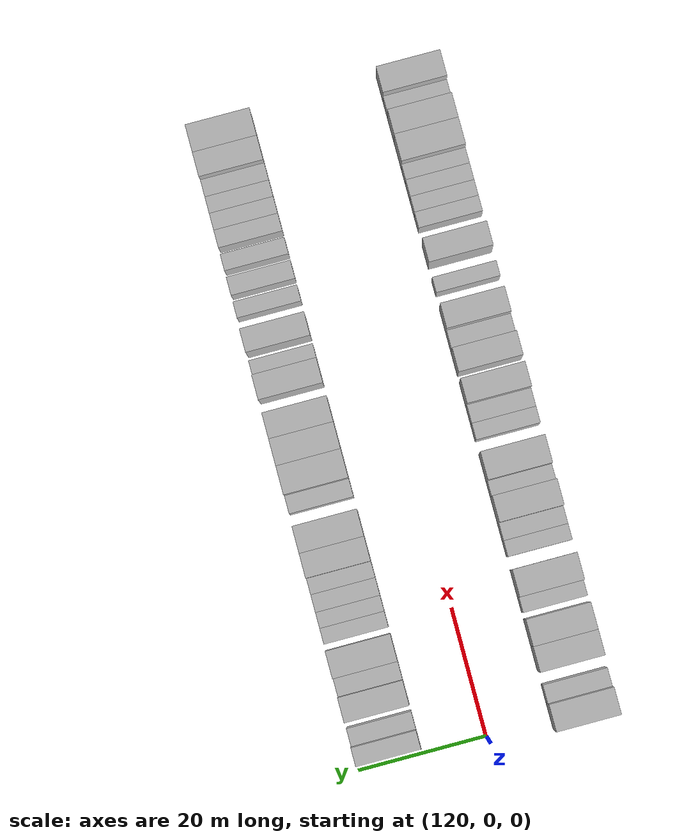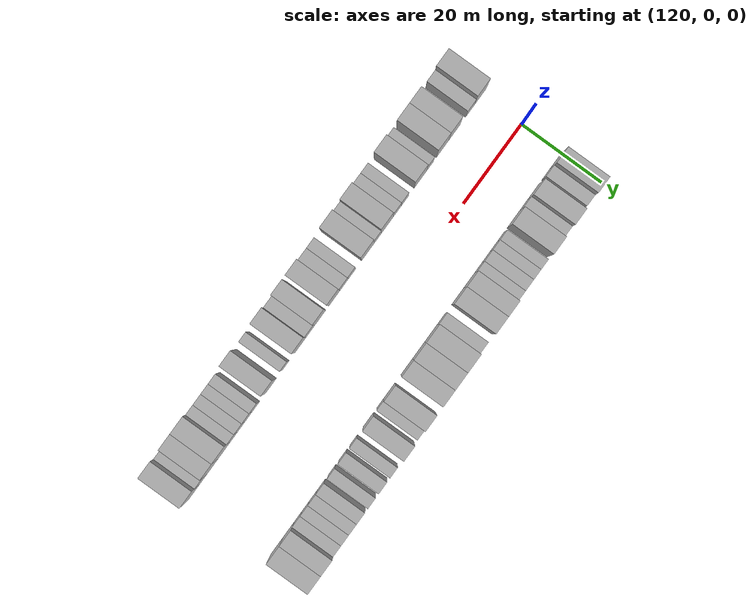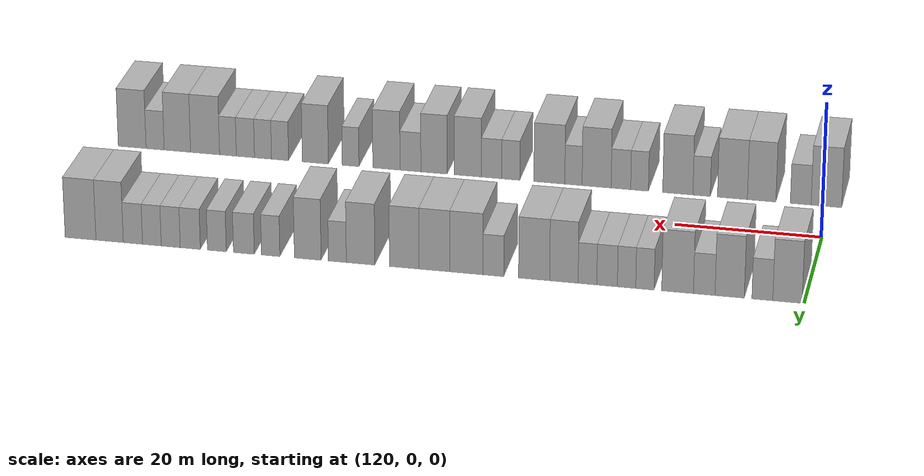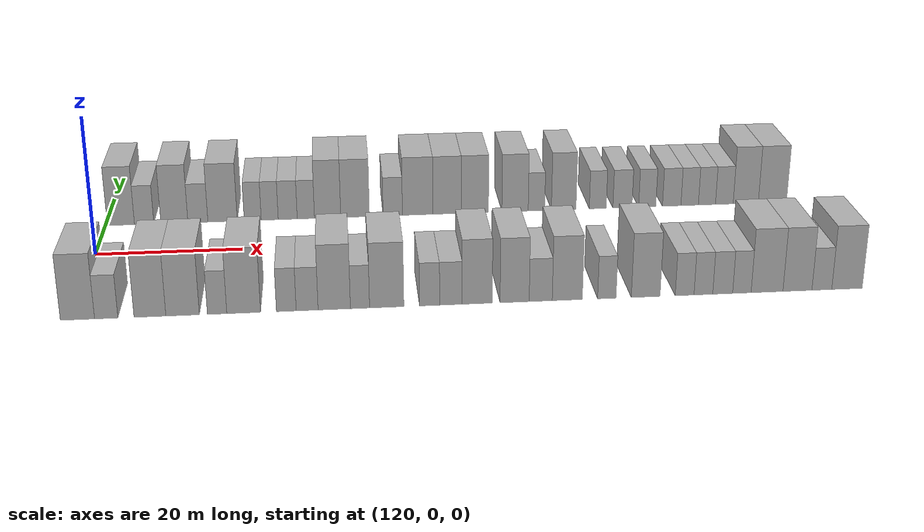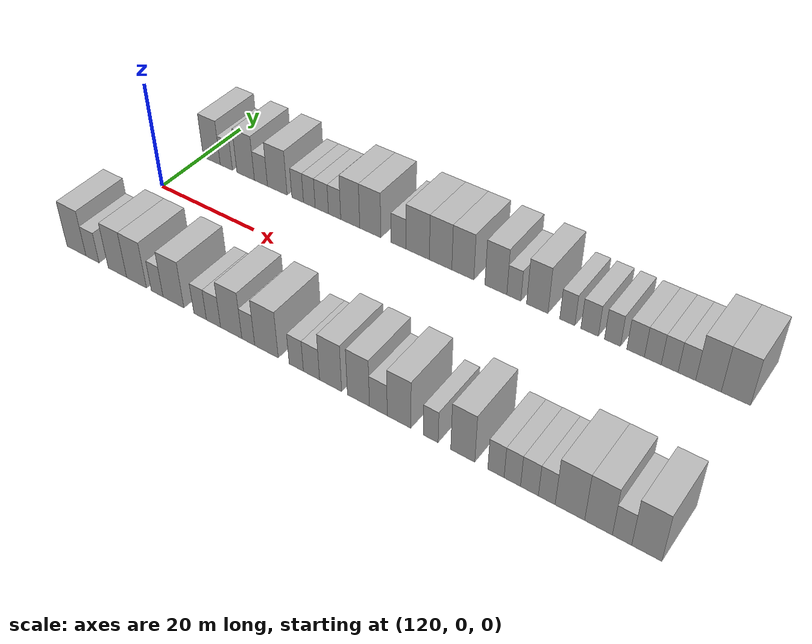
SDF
<sdf version="1.6">
 <world name="default">
  <model name="building_27">
   <static>1</static>
   <pose>122.1426 15.0000 0 0.000000 0.000000 1.570796</pose>
   <link name="link">
    <pose>0 0 4.50 0 0 0</pose>
    <collision name="collision"><geometry><box><size>10.0000 3.8595 9.0000</size></box></geometry></collision>
    <visual name="visual">
     <cast_shadows>0</cast_shadows>
     <geometry><box><size>10.0000 3.8595 9.0000</size></box></geometry>
     <material>
      <script>
       <uri>model://HANNAS_wall/materials/scripts</uri>
       <uri>model://HANNAS_wall/materials/textures</uri>
       <name>vrc/HANNAS_wall</name>
      </script>
     </material>
    </visual>
   </link>
  </model>
  <model name="building_28">
   <static>1</static>
   <pose>125.4529 15.0000 0 0.000000 0.000000 1.570796</pose>
   <link name="link">
    <pose>0 0 3.00 0 0 0</pose>
    <collision name="collision"><geometry><box><size>10.0000 2.7610 6.0000</size></box></geometry></collision>
    <visual name="visual">
     <cast_shadows>0</cast_shadows>
     <geometry><box><size>10.0000 2.7610 6.0000</size></box></geometry>
     <material>
      <script>
       <uri>model://HANNAS_wall/materials/scripts</uri>
       <uri>model://HANNAS_wall/materials/textures</uri>
       <name>vrc/HANNAS_wall</name>
      </script>
     </material>
    </visual>
   </link>
  </model>
  <model name="building_29">
   <static>1</static>
   <pose>129.7695 15.0000 0 0.000000 0.000000 1.570796</pose>
   <link name="link">
    <pose>0 0 4.50 0 0 0</pose>
    <collision name="collision"><geometry><box><size>10.0000 3.8722 9.0000</size></box></geometry></collision>
    <visual name="visual">
     <cast_shadows>0</cast_shadows>
     <geometry><box><size>10.0000 3.8722 9.0000</size></box></geometry>
     <material>
      <script>
       <uri>model://HANNAS_wall/materials/scripts</uri>
       <uri>model://HANNAS_wall/materials/textures</uri>
       <name>vrc/HANNAS_wall</name>
      </script>
     </material>
    </visual>
   </link>
  </model>
  <model name="building_30">
   <static>1</static>
   <pose>133.1367 15.0000 0 0.000000 0.000000 1.570796</pose>
   <link name="link">
    <pose>0 0 3.00 0 0 0</pose>
    <collision name="collision"><geometry><box><size>10.0000 2.8621 6.0000</size></box></geometry></collision>
    <visual name="visual">
     <cast_shadows>0</cast_shadows>
     <geometry><box><size>10.0000 2.8621 6.0000</size></box></geometry>
     <material>
      <script>
       <uri>model://HANNAS_wall/materials/scripts</uri>
       <uri>model://HANNAS_wall/materials/textures</uri>
       <name>vrc/HANNAS_wall</name>
      </script>
     </material>
    </visual>
   </link>
  </model>
  <model name="building_31">
   <static>1</static>
   <pose>136.6825 15.0000 0 0.000000 0.000000 1.570796</pose>
   <link name="link">
    <pose>0 0 4.50 0 0 0</pose>
    <collision name="collision"><geometry><box><size>10.0000 4.2296 9.0000</size></box></geometry></collision>
    <visual name="visual">
     <cast_shadows>0</cast_shadows>
     <geometry><box><size>10.0000 4.2296 9.0000</size></box></geometry>
     <material>
      <script>
       <uri>model://HANNAS_wall/materials/scripts</uri>
       <uri>model://HANNAS_wall/materials/textures</uri>
       <name>vrc/HANNAS_wall</name>
      </script>
     </material>
    </visual>
   </link>
  </model>
  <model name="building_32">
   <static>1</static>
   <pose>141.0260 15.0000 0 0.000000 0.000000 1.570796</pose>
   <link name="link">
    <pose>0 0 3.00 0 0 0</pose>
    <collision name="collision"><geometry><box><size>10.0000 2.4573 6.0000</size></box></geometry></collision>
    <visual name="visual">
     <cast_shadows>0</cast_shadows>
     <geometry><box><size>10.0000 2.4573 6.0000</size></box></geometry>
     <material>
      <script>
       <uri>model://HANNAS_wall/materials/scripts</uri>
       <uri>model://HANNAS_wall/materials/textures</uri>
       <name>vrc/HANNAS_wall</name>
      </script>
     </material>
    </visual>
   </link>
  </model>
  <model name="building_33">
   <static>1</static>
   <pose>143.4801 15.0000 0 0.000000 0.000000 1.570796</pose>
   <link name="link">
    <pose>0 0 3.00 0 0 0</pose>
    <collision name="collision"><geometry><box><size>10.0000 2.4510 6.0000</size></box></geometry></collision>
    <visual name="visual">
     <cast_shadows>0</cast_shadows>
     <geometry><box><size>10.0000 2.4510 6.0000</size></box></geometry>
     <material>
      <script>
       <uri>model://HANNAS_wall/materials/scripts</uri>
       <uri>model://HANNAS_wall/materials/textures</uri>
       <name>vrc/HANNAS_wall</name>
      </script>
     </material>
    </visual>
   </link>
  </model>
  <model name="building_34">
   <static>1</static>
   <pose>146.0820 15.0000 0 0.000000 0.000000 1.570796</pose>
   <link name="link">
    <pose>0 0 3.00 0 0 0</pose>
    <collision name="collision"><geometry><box><size>10.0000 2.7527 6.0000</size></box></geometry></collision>
    <visual name="visual">
     <cast_shadows>0</cast_shadows>
     <geometry><box><size>10.0000 2.7527 6.0000</size></box></geometry>
     <material>
      <script>
       <uri>model://HANNAS_wall/materials/scripts</uri>
       <uri>model://HANNAS_wall/materials/textures</uri>
       <name>vrc/HANNAS_wall</name>
      </script>
     </material>
    </visual>
   </link>
  </model>
  <model name="building_35">
   <static>1</static>
   <pose>148.7128 15.0000 0 0.000000 0.000000 1.570796</pose>
   <link name="link">
    <pose>0 0 3.00 0 0 0</pose>
    <collision name="collision"><geometry><box><size>10.0000 2.5088 6.0000</size></box></geometry></collision>
    <visual name="visual">
     <cast_shadows>0</cast_shadows>
     <geometry><box><size>10.0000 2.5088 6.0000</size></box></geometry>
     <material>
      <script>
       <uri>model://HANNAS_wall/materials/scripts</uri>
       <uri>model://HANNAS_wall/materials/textures</uri>
       <name>vrc/HANNAS_wall</name>
      </script>
     </material>
    </visual>
   </link>
  </model>
  <model name="building_36">
   <static>1</static>
   <pose>151.8779 15.0000 0 0.000000 0.000000 1.570796</pose>
   <link name="link">
    <pose>0 0 4.50 0 0 0</pose>
    <collision name="collision"><geometry><box><size>10.0000 3.8214 9.0000</size></box></geometry></collision>
    <visual name="visual">
     <cast_shadows>0</cast_shadows>
     <geometry><box><size>10.0000 3.8214 9.0000</size></box></geometry>
     <material>
      <script>
       <uri>model://HANNAS_wall/materials/scripts</uri>
       <uri>model://HANNAS_wall/materials/textures</uri>
       <name>vrc/HANNAS_wall</name>
      </script>
     </material>
    </visual>
   </link>
  </model>
  <model name="building_37">
   <static>1</static>
   <pose>155.8819 15.0000 0 0.000000 0.000000 1.570796</pose>
   <link name="link">
    <pose>0 0 4.50 0 0 0</pose>
    <collision name="collision"><geometry><box><size>10.0000 4.1867 9.0000</size></box></geometry></collision>
    <visual name="visual">
     <cast_shadows>0</cast_shadows>
     <geometry><box><size>10.0000 4.1867 9.0000</size></box></geometry>
     <material>
      <script>
       <uri>model://HANNAS_wall/materials/scripts</uri>
       <uri>model://HANNAS_wall/materials/textures</uri>
       <name>vrc/HANNAS_wall</name>
      </script>
     </material>
    </visual>
   </link>
  </model>
  <model name="building_38">
   <static>1</static>
   <pose>161.3899 15.0000 0 0.000000 0.000000 1.570796</pose>
   <link name="link">
    <pose>0 0 3.00 0 0 0</pose>
    <collision name="collision"><geometry><box><size>10.0000 2.8291 6.0000</size></box></geometry></collision>
    <visual name="visual">
     <cast_shadows>0</cast_shadows>
     <geometry><box><size>10.0000 2.8291 6.0000</size></box></geometry>
     <material>
      <script>
       <uri>model://HANNAS_wall/materials/scripts</uri>
       <uri>model://HANNAS_wall/materials/textures</uri>
       <name>vrc/HANNAS_wall</name>
      </script>
     </material>
    </visual>
   </link>
  </model>
  <model name="building_39">
   <static>1</static>
   <pose>165.0470 15.0000 0 0.000000 0.000000 1.570796</pose>
   <link name="link">
    <pose>0 0 4.50 0 0 0</pose>
    <collision name="collision"><geometry><box><size>10.0000 4.4852 9.0000</size></box></geometry></collision>
    <visual name="visual">
     <cast_shadows>0</cast_shadows>
     <geometry><box><size>10.0000 4.4852 9.0000</size></box></geometry>
     <material>
      <script>
       <uri>model://HANNAS_wall/materials/scripts</uri>
       <uri>model://HANNAS_wall/materials/textures</uri>
       <name>vrc/HANNAS_wall</name>
      </script>
     </material>
    </visual>
   </link>
  </model>
  <model name="building_40">
   <static>1</static>
   <pose>169.3788 15.0000 0 0.000000 0.000000 1.570796</pose>
   <link name="link">
    <pose>0 0 4.50 0 0 0</pose>
    <collision name="collision"><geometry><box><size>10.0000 4.1784 9.0000</size></box></geometry></collision>
    <visual name="visual">
     <cast_shadows>0</cast_shadows>
     <geometry><box><size>10.0000 4.1784 9.0000</size></box></geometry>
     <material>
      <script>
       <uri>model://HANNAS_wall/materials/scripts</uri>
       <uri>model://HANNAS_wall/materials/textures</uri>
       <name>vrc/HANNAS_wall</name>
      </script>
     </material>
    </visual>
   </link>
  </model>
  <model name="building_41">
   <static>1</static>
   <pose>173.4807 15.0000 0 0.000000 0.000000 1.570796</pose>
   <link name="link">
    <pose>0 0 4.50 0 0 0</pose>
    <collision name="collision"><geometry><box><size>10.0000 4.0255 9.0000</size></box></geometry></collision>
    <visual name="visual">
     <cast_shadows>0</cast_shadows>
     <geometry><box><size>10.0000 4.0255 9.0000</size></box></geometry>
     <material>
      <script>
       <uri>model://HANNAS_wall/materials/scripts</uri>
       <uri>model://HANNAS_wall/materials/textures</uri>
       <name>vrc/HANNAS_wall</name>
      </script>
     </material>
    </visual>
   </link>
  </model>
  <model name="building_42">
   <static>1</static>
   <pose>179.4450 15.0000 0 0.000000 0.000000 1.570796</pose>
   <link name="link">
    <pose>0 0 4.50 0 0 0</pose>
    <collision name="collision"><geometry><box><size>10.0000 3.9032 9.0000</size></box></geometry></collision>
    <visual name="visual">
     <cast_shadows>0</cast_shadows>
     <geometry><box><size>10.0000 3.9032 9.0000</size></box></geometry>
     <material>
      <script>
       <uri>model://HANNAS_wall/materials/scripts</uri>
       <uri>model://HANNAS_wall/materials/textures</uri>
       <name>vrc/HANNAS_wall</name>
      </script>
     </material>
    </visual>
   </link>
  </model>
  <model name="building_43">
   <static>1</static>
   <pose>182.6256 15.0000 0 0.000000 0.000000 1.570796</pose>
   <link name="link">
    <pose>0 0 3.00 0 0 0</pose>
    <collision name="collision"><geometry><box><size>10.0000 2.4580 6.0000</size></box></geometry></collision>
    <visual name="visual">
     <cast_shadows>0</cast_shadows>
     <geometry><box><size>10.0000 2.4580 6.0000</size></box></geometry>
     <material>
      <script>
       <uri>model://HANNAS_wall/materials/scripts</uri>
       <uri>model://HANNAS_wall/materials/textures</uri>
       <name>vrc/HANNAS_wall</name>
      </script>
     </material>
    </visual>
   </link>
  </model>
  <model name="building_44">
   <static>1</static>
   <pose>186.6923 15.0000 0 0.000000 0.000000 1.570796</pose>
   <link name="link">
    <pose>0 0 4.50 0 0 0</pose>
    <collision name="collision"><geometry><box><size>10.0000 3.6755 9.0000</size></box></geometry></collision>
    <visual name="visual">
     <cast_shadows>0</cast_shadows>
     <geometry><box><size>10.0000 3.6755 9.0000</size></box></geometry>
     <material>
      <script>
       <uri>model://HANNAS_wall/materials/scripts</uri>
       <uri>model://HANNAS_wall/materials/textures</uri>
       <name>vrc/HANNAS_wall</name>
      </script>
     </material>
    </visual>
   </link>
  </model>
  <model name="building_45">
   <static>1</static>
   <pose>191.7995 15.0000 0 0.000000 0.000000 1.570796</pose>
   <link name="link">
    <pose>0 0 3.00 0 0 0</pose>
    <collision name="collision"><geometry><box><size>10.0000 2.5390 6.0000</size></box></geometry></collision>
    <visual name="visual">
     <cast_shadows>0</cast_shadows>
     <geometry><box><size>10.0000 2.5390 6.0000</size></box></geometry>
     <material>
      <script>
       <uri>model://HANNAS_wall/materials/scripts</uri>
       <uri>model://HANNAS_wall/materials/textures</uri>
       <name>vrc/HANNAS_wall</name>
      </script>
     </material>
    </visual>
   </link>
  </model>
  <model name="building_46">
   <static>1</static>
   <pose>195.5084 15.0000 0 0.000000 0.000000 1.570796</pose>
   <link name="link">
    <pose>0 0 3.00 0 0 0</pose>
    <collision name="collision"><geometry><box><size>10.0000 2.8789 6.0000</size></box></geometry></collision>
    <visual name="visual">
     <cast_shadows>0</cast_shadows>
     <geometry><box><size>10.0000 2.8789 6.0000</size></box></geometry>
     <material>
      <script>
       <uri>model://HANNAS_wall/materials/scripts</uri>
       <uri>model://HANNAS_wall/materials/textures</uri>
       <name>vrc/HANNAS_wall</name>
      </script>
     </material>
    </visual>
   </link>
  </model>
  <model name="building_47">
   <static>1</static>
   <pose>199.2473 15.0000 0 0.000000 0.000000 1.570796</pose>
   <link name="link">
    <pose>0 0 3.00 0 0 0</pose>
    <collision name="collision"><geometry><box><size>10.0000 2.5990 6.0000</size></box></geometry></collision>
    <visual name="visual">
     <cast_shadows>0</cast_shadows>
     <geometry><box><size>10.0000 2.5990 6.0000</size></box></geometry>
     <material>
      <script>
       <uri>model://HANNAS_wall/materials/scripts</uri>
       <uri>model://HANNAS_wall/materials/textures</uri>
       <name>vrc/HANNAS_wall</name>
      </script>
     </material>
    </visual>
   </link>
  </model>
  <model name="building_48">
   <static>1</static>
   <pose>202.9447 15.0000 0 0.000000 0.000000 1.570796</pose>
   <link name="link">
    <pose>0 0 3.00 0 0 0</pose>
    <collision name="collision"><geometry><box><size>10.0000 2.7958 6.0000</size></box></geometry></collision>
    <visual name="visual">
     <cast_shadows>0</cast_shadows>
     <geometry><box><size>10.0000 2.7958 6.0000</size></box></geometry>
     <material>
      <script>
       <uri>model://HANNAS_wall/materials/scripts</uri>
       <uri>model://HANNAS_wall/materials/textures</uri>
       <name>vrc/HANNAS_wall</name>
      </script>
     </material>
    </visual>
   </link>
  </model>
  <model name="building_49">
   <static>1</static>
   <pose>205.6645 15.0000 0 0.000000 0.000000 1.570796</pose>
   <link name="link">
    <pose>0 0 3.00 0 0 0</pose>
    <collision name="collision"><geometry><box><size>10.0000 2.6438 6.0000</size></box></geometry></collision>
    <visual name="visual">
     <cast_shadows>0</cast_shadows>
     <geometry><box><size>10.0000 2.6438 6.0000</size></box></geometry>
     <material>
      <script>
       <uri>model://HANNAS_wall/materials/scripts</uri>
       <uri>model://HANNAS_wall/materials/textures</uri>
       <name>vrc/HANNAS_wall</name>
      </script>
     </material>
    </visual>
   </link>
  </model>
  <model name="building_50">
   <static>1</static>
   <pose>208.2870 15.0000 0 0.000000 0.000000 1.570796</pose>
   <link name="link">
    <pose>0 0 3.00 0 0 0</pose>
    <collision name="collision"><geometry><box><size>10.0000 2.6012 6.0000</size></box></geometry></collision>
    <visual name="visual">
     <cast_shadows>0</cast_shadows>
     <geometry><box><size>10.0000 2.6012 6.0000</size></box></geometry>
     <material>
      <script>
       <uri>model://HANNAS_wall/materials/scripts</uri>
       <uri>model://HANNAS_wall/materials/textures</uri>
       <name>vrc/HANNAS_wall</name>
      </script>
     </material>
    </visual>
   </link>
  </model>
  <model name="building_51">
   <static>1</static>
   <pose>210.9340 15.0000 0 0.000000 0.000000 1.570796</pose>
   <link name="link">
    <pose>0 0 3.00 0 0 0</pose>
    <collision name="collision"><geometry><box><size>10.0000 2.6929 6.0000</size></box></geometry></collision>
    <visual name="visual">
     <cast_shadows>0</cast_shadows>
     <geometry><box><size>10.0000 2.6929 6.0000</size></box></geometry>
     <material>
      <script>
       <uri>model://HANNAS_wall/materials/scripts</uri>
       <uri>model://HANNAS_wall/materials/textures</uri>
       <name>vrc/HANNAS_wall</name>
      </script>
     </material>
    </visual>
   </link>
  </model>
  <model name="building_52">
   <static>1</static>
   <pose>214.1978 15.0000 0 0.000000 0.000000 1.570796</pose>
   <link name="link">
    <pose>0 0 4.50 0 0 0</pose>
    <collision name="collision"><geometry><box><size>10.0000 3.8347 9.0000</size></box></geometry></collision>
    <visual name="visual">
     <cast_shadows>0</cast_shadows>
     <geometry><box><size>10.0000 3.8347 9.0000</size></box></geometry>
     <material>
      <script>
       <uri>model://HANNAS_wall/materials/scripts</uri>
       <uri>model://HANNAS_wall/materials/textures</uri>
       <name>vrc/HANNAS_wall</name>
      </script>
     </material>
    </visual>
   </link>
  </model>
  <model name="building_53">
   <static>1</static>
   <pose>218.2767 15.0000 0 0.000000 0.000000 1.570796</pose>
   <link name="link">
    <pose>0 0 4.50 0 0 0</pose>
    <collision name="collision"><geometry><box><size>10.0000 4.3231 9.0000</size></box></geometry></collision>
    <visual name="visual">
     <cast_shadows>0</cast_shadows>
     <geometry><box><size>10.0000 4.3231 9.0000</size></box></geometry>
     <material>
      <script>
       <uri>model://HANNAS_wall/materials/scripts</uri>
       <uri>model://HANNAS_wall/materials/textures</uri>
       <name>vrc/HANNAS_wall</name>
      </script>
     </material>
    </visual>
   </link>
  </model>
  <model name="building_81">
   <static>1</static>
   <pose>120.4911 -15.0000 0 0.000000 0.000000 1.570796</pose>
   <link name="link">
    <pose>0 0 4.50 0 0 0</pose>
    <collision name="collision"><geometry><box><size>10.0000 4.2173 9.0000</size></box></geometry></collision>
    <visual name="visual">
     <cast_shadows>0</cast_shadows>
     <geometry><box><size>10.0000 4.2173 9.0000</size></box></geometry>
     <material>
      <script>
       <uri>model://HANNAS_wall/materials/scripts</uri>
       <uri>model://HANNAS_wall/materials/textures</uri>
       <name>vrc/HANNAS_wall</name>
      </script>
     </material>
    </visual>
   </link>
  </model>
  <model name="building_82">
   <static>1</static>
   <pose>124.0384 -15.0000 0 0.000000 0.000000 1.570796</pose>
   <link name="link">
    <pose>0 0 3.00 0 0 0</pose>
    <collision name="collision"><geometry><box><size>10.0000 2.8773 6.0000</size></box></geometry></collision>
    <visual name="visual">
     <cast_shadows>0</cast_shadows>
     <geometry><box><size>10.0000 2.8773 6.0000</size></box></geometry>
     <material>
      <script>
       <uri>model://HANNAS_wall/materials/scripts</uri>
       <uri>model://HANNAS_wall/materials/textures</uri>
       <name>vrc/HANNAS_wall</name>
      </script>
     </material>
    </visual>
   </link>
  </model>
  <model name="building_83">
   <static>1</static>
   <pose>129.4526 -15.0000 0 0.000000 0.000000 1.570796</pose>
   <link name="link">
    <pose>0 0 4.50 0 0 0</pose>
    <collision name="collision"><geometry><box><size>10.0000 3.9512 9.0000</size></box></geometry></collision>
    <visual name="visual">
     <cast_shadows>0</cast_shadows>
     <geometry><box><size>10.0000 3.9512 9.0000</size></box></geometry>
     <material>
      <script>
       <uri>model://HANNAS_wall/materials/scripts</uri>
       <uri>model://HANNAS_wall/materials/textures</uri>
       <name>vrc/HANNAS_wall</name>
      </script>
     </material>
    </visual>
   </link>
  </model>
  <model name="building_84">
   <static>1</static>
   <pose>133.5169 -15.0000 0 0.000000 0.000000 1.570796</pose>
   <link name="link">
    <pose>0 0 4.50 0 0 0</pose>
    <collision name="collision"><geometry><box><size>10.0000 4.1773 9.0000</size></box></geometry></collision>
    <visual name="visual">
     <cast_shadows>0</cast_shadows>
     <geometry><box><size>10.0000 4.1773 9.0000</size></box></geometry>
     <material>
      <script>
       <uri>model://HANNAS_wall/materials/scripts</uri>
       <uri>model://HANNAS_wall/materials/textures</uri>
       <name>vrc/HANNAS_wall</name>
      </script>
     </material>
    </visual>
   </link>
  </model>
  <model name="building_85">
   <static>1</static>
   <pose>137.8187 -15.0000 0 0.000000 0.000000 1.570796</pose>
   <link name="link">
    <pose>0 0 3.00 0 0 0</pose>
    <collision name="collision"><geometry><box><size>10.0000 2.4265 6.0000</size></box></geometry></collision>
    <visual name="visual">
     <cast_shadows>0</cast_shadows>
     <geometry><box><size>10.0000 2.4265 6.0000</size></box></geometry>
     <material>
      <script>
       <uri>model://HANNAS_wall/materials/scripts</uri>
       <uri>model://HANNAS_wall/materials/textures</uri>
       <name>vrc/HANNAS_wall</name>
      </script>
     </material>
    </visual>
   </link>
  </model>
  <model name="building_86">
   <static>1</static>
   <pose>141.1483 -15.0000 0 0.000000 0.000000 1.570796</pose>
   <link name="link">
    <pose>0 0 4.50 0 0 0</pose>
    <collision name="collision"><geometry><box><size>10.0000 4.2326 9.0000</size></box></geometry></collision>
    <visual name="visual">
     <cast_shadows>0</cast_shadows>
     <geometry><box><size>10.0000 4.2326 9.0000</size></box></geometry>
     <material>
      <script>
       <uri>model://HANNAS_wall/materials/scripts</uri>
       <uri>model://HANNAS_wall/materials/textures</uri>
       <name>vrc/HANNAS_wall</name>
      </script>
     </material>
    </visual>
   </link>
  </model>
  <model name="building_87">
   <static>1</static>
   <pose>146.5078 -15.0000 0 0.000000 0.000000 1.570796</pose>
   <link name="link">
    <pose>0 0 3.00 0 0 0</pose>
    <collision name="collision"><geometry><box><size>10.0000 2.4865 6.0000</size></box></geometry></collision>
    <visual name="visual">
     <cast_shadows>0</cast_shadows>
     <geometry><box><size>10.0000 2.4865 6.0000</size></box></geometry>
     <material>
      <script>
       <uri>model://HANNAS_wall/materials/scripts</uri>
       <uri>model://HANNAS_wall/materials/textures</uri>
       <name>vrc/HANNAS_wall</name>
      </script>
     </material>
    </visual>
   </link>
  </model>
  <model name="building_88">
   <static>1</static>
   <pose>149.1349 -15.0000 0 0.000000 0.000000 1.570796</pose>
   <link name="link">
    <pose>0 0 3.00 0 0 0</pose>
    <collision name="collision"><geometry><box><size>10.0000 2.7676 6.0000</size></box></geometry></collision>
    <visual name="visual">
     <cast_shadows>0</cast_shadows>
     <geometry><box><size>10.0000 2.7676 6.0000</size></box></geometry>
     <material>
      <script>
       <uri>model://HANNAS_wall/materials/scripts</uri>
       <uri>model://HANNAS_wall/materials/textures</uri>
       <name>vrc/HANNAS_wall</name>
      </script>
     </material>
    </visual>
   </link>
  </model>
  <model name="building_89">
   <static>1</static>
   <pose>152.5658 -15.0000 0 0.000000 0.000000 1.570796</pose>
   <link name="link">
    <pose>0 0 4.50 0 0 0</pose>
    <collision name="collision"><geometry><box><size>10.0000 4.0943 9.0000</size></box></geometry></collision>
    <visual name="visual">
     <cast_shadows>0</cast_shadows>
     <geometry><box><size>10.0000 4.0943 9.0000</size></box></geometry>
     <material>
      <script>
       <uri>model://HANNAS_wall/materials/scripts</uri>
       <uri>model://HANNAS_wall/materials/textures</uri>
       <name>vrc/HANNAS_wall</name>
      </script>
     </material>
    </visual>
   </link>
  </model>
  <model name="building_90">
   <static>1</static>
   <pose>155.8304 -15.0000 0 0.000000 0.000000 1.570796</pose>
   <link name="link">
    <pose>0 0 3.00 0 0 0</pose>
    <collision name="collision"><geometry><box><size>10.0000 2.4349 6.0000</size></box></geometry></collision>
    <visual name="visual">
     <cast_shadows>0</cast_shadows>
     <geometry><box><size>10.0000 2.4349 6.0000</size></box></geometry>
     <material>
      <script>
       <uri>model://HANNAS_wall/materials/scripts</uri>
       <uri>model://HANNAS_wall/materials/textures</uri>
       <name>vrc/HANNAS_wall</name>
      </script>
     </material>
    </visual>
   </link>
  </model>
  <model name="building_91">
   <static>1</static>
   <pose>159.2370 -15.0000 0 0.000000 0.000000 1.570796</pose>
   <link name="link">
    <pose>0 0 4.50 0 0 0</pose>
    <collision name="collision"><geometry><box><size>10.0000 4.3783 9.0000</size></box></geometry></collision>
    <visual name="visual">
     <cast_shadows>0</cast_shadows>
     <geometry><box><size>10.0000 4.3783 9.0000</size></box></geometry>
     <material>
      <script>
       <uri>model://HANNAS_wall/materials/scripts</uri>
       <uri>model://HANNAS_wall/materials/textures</uri>
       <name>vrc/HANNAS_wall</name>
      </script>
     </material>
    </visual>
   </link>
  </model>
  <model name="building_92">
   <static>1</static>
   <pose>164.7140 -15.0000 0 0.000000 0.000000 1.570796</pose>
   <link name="link">
    <pose>0 0 3.00 0 0 0</pose>
    <collision name="collision"><geometry><box><size>10.0000 2.5758 6.0000</size></box></geometry></collision>
    <visual name="visual">
     <cast_shadows>0</cast_shadows>
     <geometry><box><size>10.0000 2.5758 6.0000</size></box></geometry>
     <material>
      <script>
       <uri>model://HANNAS_wall/materials/scripts</uri>
       <uri>model://HANNAS_wall/materials/textures</uri>
       <name>vrc/HANNAS_wall</name>
      </script>
     </material>
    </visual>
   </link>
  </model>
  <model name="building_93">
   <static>1</static>
   <pose>167.4472 -15.0000 0 0.000000 0.000000 1.570796</pose>
   <link name="link">
    <pose>0 0 3.00 0 0 0</pose>
    <collision name="collision"><geometry><box><size>10.0000 2.8906 6.0000</size></box></geometry></collision>
    <visual name="visual">
     <cast_shadows>0</cast_shadows>
     <geometry><box><size>10.0000 2.8906 6.0000</size></box></geometry>
     <material>
      <script>
       <uri>model://HANNAS_wall/materials/scripts</uri>
       <uri>model://HANNAS_wall/materials/textures</uri>
       <name>vrc/HANNAS_wall</name>
      </script>
     </material>
    </visual>
   </link>
  </model>
  <model name="building_94">
   <static>1</static>
   <pose>170.8311 -15.0000 0 0.000000 0.000000 1.570796</pose>
   <link name="link">
    <pose>0 0 4.50 0 0 0</pose>
    <collision name="collision"><geometry><box><size>10.0000 3.8772 9.0000</size></box></geometry></collision>
    <visual name="visual">
     <cast_shadows>0</cast_shadows>
     <geometry><box><size>10.0000 3.8772 9.0000</size></box></geometry>
     <material>
      <script>
       <uri>model://HANNAS_wall/materials/scripts</uri>
       <uri>model://HANNAS_wall/materials/textures</uri>
       <name>vrc/HANNAS_wall</name>
      </script>
     </material>
    </visual>
   </link>
  </model>
  <model name="building_95">
   <static>1</static>
   <pose>175.6542 -15.0000 0 0.000000 0.000000 1.570796</pose>
   <link name="link">
    <pose>0 0 4.50 0 0 0</pose>
    <collision name="collision"><geometry><box><size>10.0000 3.7688 9.0000</size></box></geometry></collision>
    <visual name="visual">
     <cast_shadows>0</cast_shadows>
     <geometry><box><size>10.0000 3.7688 9.0000</size></box></geometry>
     <material>
      <script>
       <uri>model://HANNAS_wall/materials/scripts</uri>
       <uri>model://HANNAS_wall/materials/textures</uri>
       <name>vrc/HANNAS_wall</name>
      </script>
     </material>
    </visual>
   </link>
  </model>
  <model name="building_96">
   <static>1</static>
   <pose>179.0342 -15.0000 0 0.000000 0.000000 1.570796</pose>
   <link name="link">
    <pose>0 0 3.00 0 0 0</pose>
    <collision name="collision"><geometry><box><size>10.0000 2.9913 6.0000</size></box></geometry></collision>
    <visual name="visual">
     <cast_shadows>0</cast_shadows>
     <geometry><box><size>10.0000 2.9913 6.0000</size></box></geometry>
     <material>
      <script>
       <uri>model://HANNAS_wall/materials/scripts</uri>
       <uri>model://HANNAS_wall/materials/textures</uri>
       <name>vrc/HANNAS_wall</name>
      </script>
     </material>
    </visual>
   </link>
  </model>
  <model name="building_97">
   <static>1</static>
   <pose>182.4860 -15.0000 0 0.000000 0.000000 1.570796</pose>
   <link name="link">
    <pose>0 0 4.50 0 0 0</pose>
    <collision name="collision"><geometry><box><size>10.0000 3.9122 9.0000</size></box></geometry></collision>
    <visual name="visual">
     <cast_shadows>0</cast_shadows>
     <geometry><box><size>10.0000 3.9122 9.0000</size></box></geometry>
     <material>
      <script>
       <uri>model://HANNAS_wall/materials/scripts</uri>
       <uri>model://HANNAS_wall/materials/textures</uri>
       <name>vrc/HANNAS_wall</name>
      </script>
     </material>
    </visual>
   </link>
  </model>
  <model name="building_98">
   <static>1</static>
   <pose>187.6453 -15.0000 0 0.000000 0.000000 1.570796</pose>
   <link name="link">
    <pose>0 0 3.00 0 0 0</pose>
    <collision name="collision"><geometry><box><size>10.0000 2.4066 6.0000</size></box></geometry></collision>
    <visual name="visual">
     <cast_shadows>0</cast_shadows>
     <geometry><box><size>10.0000 2.4066 6.0000</size></box></geometry>
     <material>
      <script>
       <uri>model://HANNAS_wall/materials/scripts</uri>
       <uri>model://HANNAS_wall/materials/textures</uri>
       <name>vrc/HANNAS_wall</name>
      </script>
     </material>
    </visual>
   </link>
  </model>
  <model name="building_99">
   <static>1</static>
   <pose>192.7369 -15.0000 0 0.000000 0.000000 1.570796</pose>
   <link name="link">
    <pose>0 0 4.50 0 0 0</pose>
    <collision name="collision"><geometry><box><size>10.0000 3.7765 9.0000</size></box></geometry></collision>
    <visual name="visual">
     <cast_shadows>0</cast_shadows>
     <geometry><box><size>10.0000 3.7765 9.0000</size></box></geometry>
     <material>
      <script>
       <uri>model://HANNAS_wall/materials/scripts</uri>
       <uri>model://HANNAS_wall/materials/textures</uri>
       <name>vrc/HANNAS_wall</name>
      </script>
     </material>
    </visual>
   </link>
  </model>
  <model name="building_100">
   <static>1</static>
   <pose>197.8634 -15.0000 0 0.000000 0.000000 1.570796</pose>
   <link name="link">
    <pose>0 0 3.00 0 0 0</pose>
    <collision name="collision"><geometry><box><size>10.0000 2.4766 6.0000</size></box></geometry></collision>
    <visual name="visual">
     <cast_shadows>0</cast_shadows>
     <geometry><box><size>10.0000 2.4766 6.0000</size></box></geometry>
     <material>
      <script>
       <uri>model://HANNAS_wall/materials/scripts</uri>
       <uri>model://HANNAS_wall/materials/textures</uri>
       <name>vrc/HANNAS_wall</name>
      </script>
     </material>
    </visual>
   </link>
  </model>
  <model name="building_101">
   <static>1</static>
   <pose>200.3389 -15.0000 0 0.000000 0.000000 1.570796</pose>
   <link name="link">
    <pose>0 0 3.00 0 0 0</pose>
    <collision name="collision"><geometry><box><size>10.0000 2.4745 6.0000</size></box></geometry></collision>
    <visual name="visual">
     <cast_shadows>0</cast_shadows>
     <geometry><box><size>10.0000 2.4745 6.0000</size></box></geometry>
     <material>
      <script>
       <uri>model://HANNAS_wall/materials/scripts</uri>
       <uri>model://HANNAS_wall/materials/textures</uri>
       <name>vrc/HANNAS_wall</name>
      </script>
     </material>
    </visual>
   </link>
  </model>
  <model name="building_102">
   <static>1</static>
   <pose>202.8946 -15.0000 0 0.000000 0.000000 1.570796</pose>
   <link name="link">
    <pose>0 0 3.00 0 0 0</pose>
    <collision name="collision"><geometry><box><size>10.0000 2.6370 6.0000</size></box></geometry></collision>
    <visual name="visual">
     <cast_shadows>0</cast_shadows>
     <geometry><box><size>10.0000 2.6370 6.0000</size></box></geometry>
     <material>
      <script>
       <uri>model://HANNAS_wall/materials/scripts</uri>
       <uri>model://HANNAS_wall/materials/textures</uri>
       <name>vrc/HANNAS_wall</name>
      </script>
     </material>
    </visual>
   </link>
  </model>
  <model name="building_103">
   <static>1</static>
   <pose>205.4383 -15.0000 0 0.000000 0.000000 1.570796</pose>
   <link name="link">
    <pose>0 0 3.00 0 0 0</pose>
    <collision name="collision"><geometry><box><size>10.0000 2.4503 6.0000</size></box></geometry></collision>
    <visual name="visual">
     <cast_shadows>0</cast_shadows>
     <geometry><box><size>10.0000 2.4503 6.0000</size></box></geometry>
     <material>
      <script>
       <uri>model://HANNAS_wall/materials/scripts</uri>
       <uri>model://HANNAS_wall/materials/textures</uri>
       <name>vrc/HANNAS_wall</name>
      </script>
     </material>
    </visual>
   </link>
  </model>
  <model name="building_104">
   <static>1</static>
   <pose>208.7829 -15.0000 0 0.000000 0.000000 1.570796</pose>
   <link name="link">
    <pose>0 0 4.50 0 0 0</pose>
    <collision name="collision"><geometry><box><size>10.0000 4.2389 9.0000</size></box></geometry></collision>
    <visual name="visual">
     <cast_shadows>0</cast_shadows>
     <geometry><box><size>10.0000 4.2389 9.0000</size></box></geometry>
     <material>
      <script>
       <uri>model://HANNAS_wall/materials/scripts</uri>
       <uri>model://HANNAS_wall/materials/textures</uri>
       <name>vrc/HANNAS_wall</name>
      </script>
     </material>
    </visual>
   </link>
  </model>
  <model name="building_105">
   <static>1</static>
   <pose>212.8391 -15.0000 0 0.000000 0.000000 1.570796</pose>
   <link name="link">
    <pose>0 0 4.50 0 0 0</pose>
    <collision name="collision"><geometry><box><size>10.0000 3.8736 9.0000</size></box></geometry></collision>
    <visual name="visual">
     <cast_shadows>0</cast_shadows>
     <geometry><box><size>10.0000 3.8736 9.0000</size></box></geometry>
     <material>
      <script>
       <uri>model://HANNAS_wall/materials/scripts</uri>
       <uri>model://HANNAS_wall/materials/textures</uri>
       <name>vrc/HANNAS_wall</name>
      </script>
     </material>
    </visual>
   </link>
  </model>
  <model name="building_106">
   <static>1</static>
   <pose>216.1046 -15.0000 0 0.000000 0.000000 1.570796</pose>
   <link name="link">
    <pose>0 0 3.00 0 0 0</pose>
    <collision name="collision"><geometry><box><size>10.0000 2.6574 6.0000</size></box></geometry></collision>
    <visual name="visual">
     <cast_shadows>0</cast_shadows>
     <geometry><box><size>10.0000 2.6574 6.0000</size></box></geometry>
     <material>
      <script>
       <uri>model://HANNAS_wall/materials/scripts</uri>
       <uri>model://HANNAS_wall/materials/textures</uri>
       <name>vrc/HANNAS_wall</name>
      </script>
     </material>
    </visual>
   </link>
  </model>
  <model name="building_107">
   <static>1</static>
   <pose>219.4765 -15.0000 0 0.000000 0.000000 1.570796</pose>
   <link name="link">
    <pose>0 0 4.50 0 0 0</pose>
    <collision name="collision"><geometry><box><size>10.0000 4.0864 9.0000</size></box></geometry></collision>
    <visual name="visual">
     <cast_shadows>0</cast_shadows>
     <geometry><box><size>10.0000 4.0864 9.0000</size></box></geometry>
     <material>
      <script>
       <uri>model://HANNAS_wall/materials/scripts</uri>
       <uri>model://HANNAS_wall/materials/textures</uri>
       <name>vrc/HANNAS_wall</name>
      </script>
     </material>
    </visual>
   </link>
  </model>
 </world>
</sdf>
